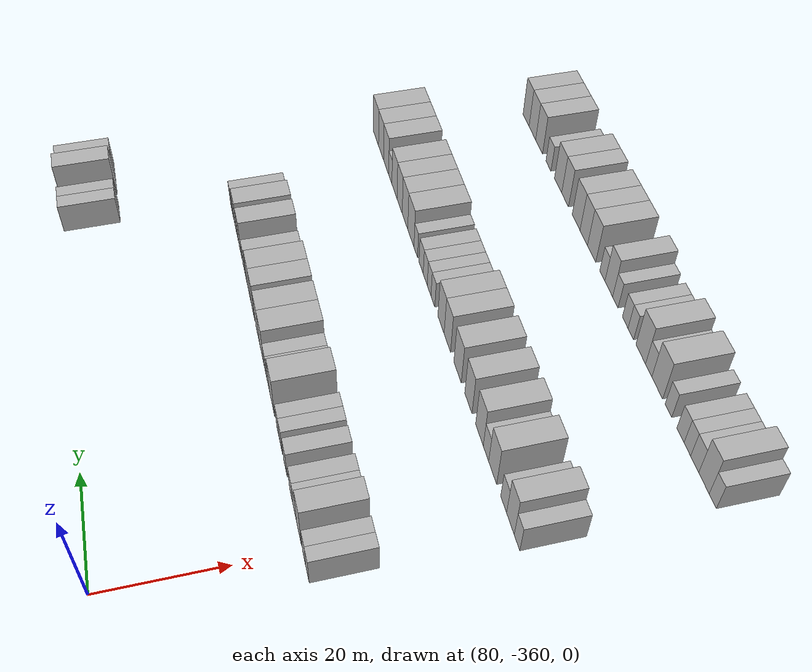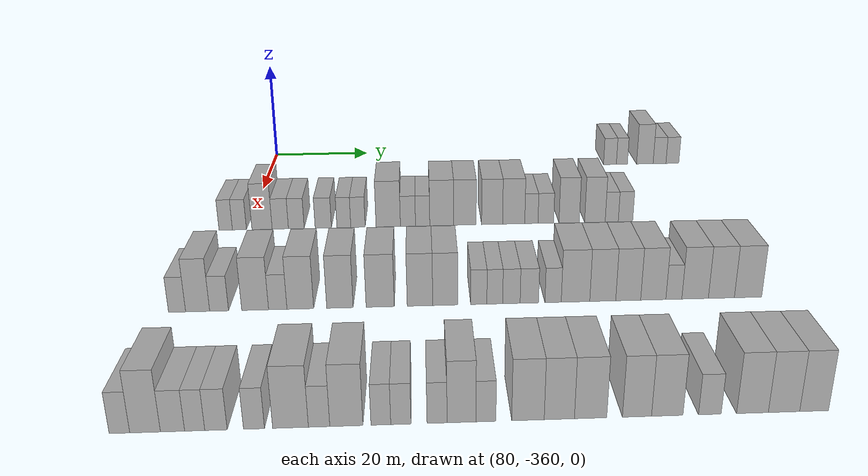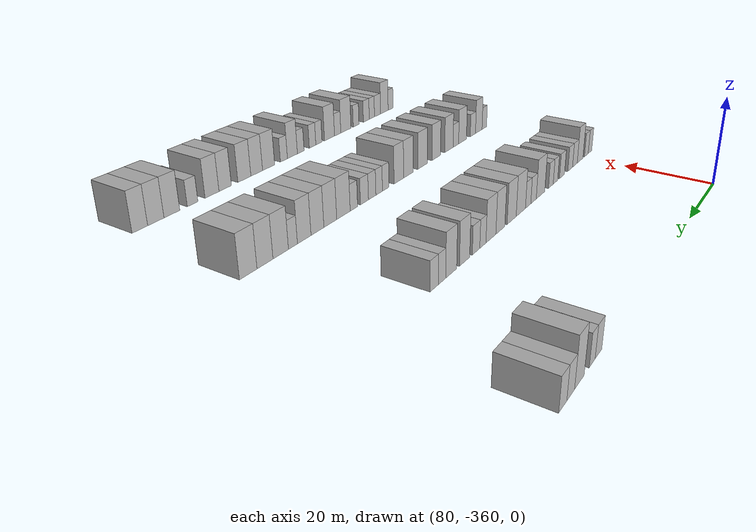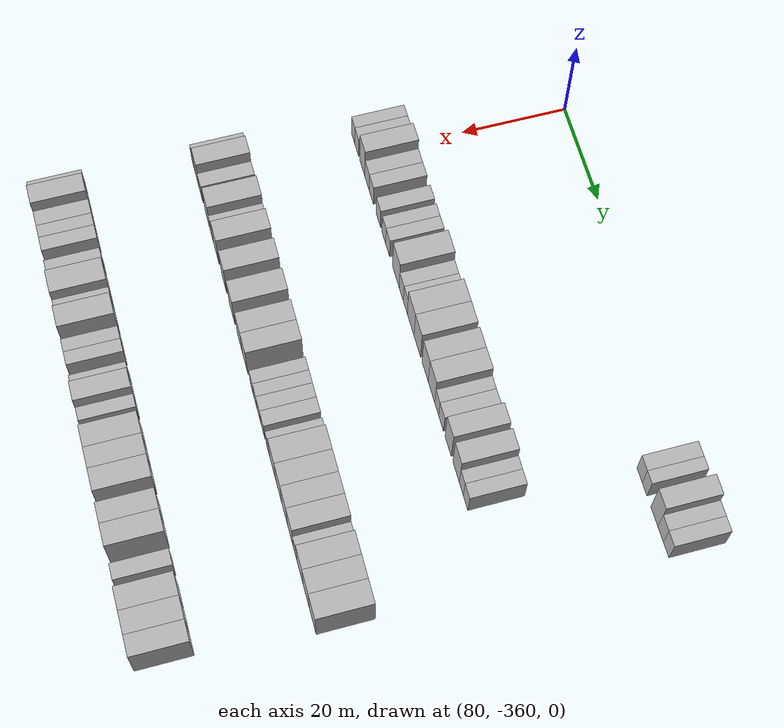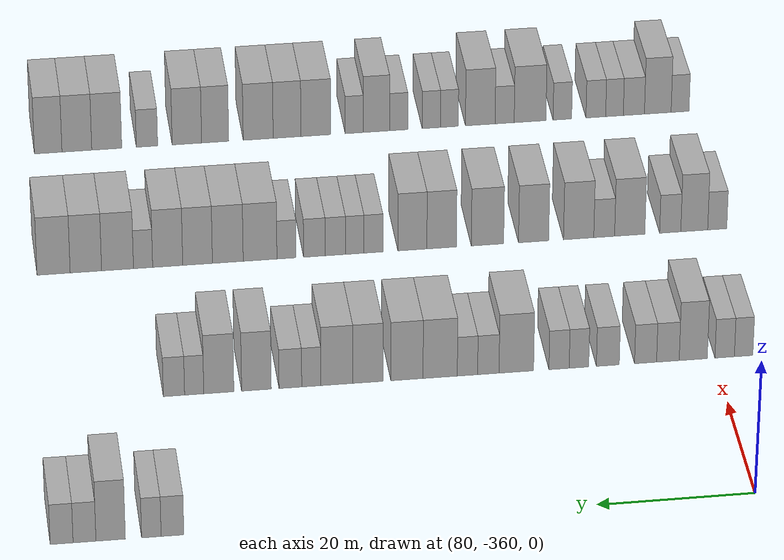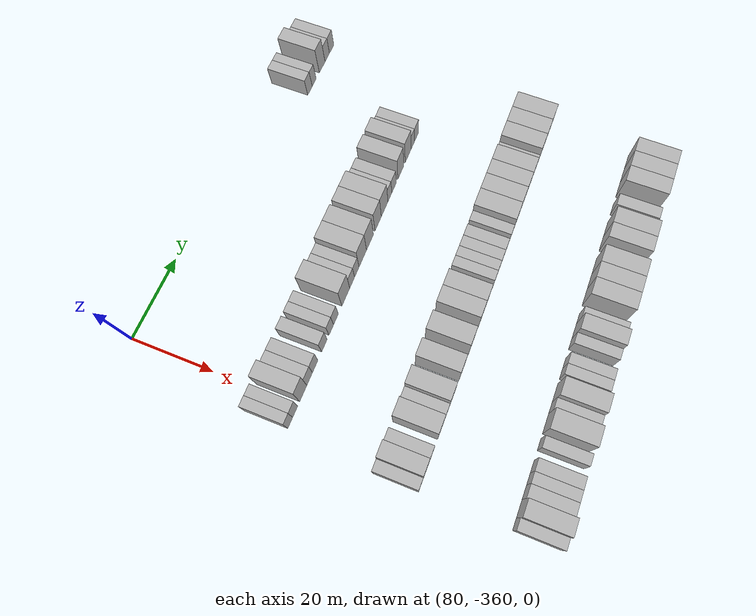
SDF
<sdf version="1.6">
 <world name="default">
  <model name="building_500">
   <static>1</static>
   <pose>85.0000 -287.1286 0 0.000000 0.000000 0.000000</pose>
   <link name="link">
    <pose>0 0 3.00 0 0 0</pose>
    <collision name="collision"><geometry><box><size>10.0000 2.8067 6.0000</size></box></geometry></collision>
    <visual name="visual">
     <cast_shadows>0</cast_shadows>
     <geometry><box><size>10.0000 2.8067 6.0000</size></box></geometry>
     <material>
      <script>
       <uri>model://HANNAS_wall/materials/scripts</uri>
       <uri>model://HANNAS_wall/materials/textures</uri>
       <name>vrc/HANNAS_wall</name>
      </script>
     </material>
    </visual>
   </link>
  </model>
  <model name="building_501">
   <static>1</static>
   <pose>85.0000 -284.5171 0 0.000000 0.000000 0.000000</pose>
   <link name="link">
    <pose>0 0 3.00 0 0 0</pose>
    <collision name="collision"><geometry><box><size>10.0000 2.4164 6.0000</size></box></geometry></collision>
    <visual name="visual">
     <cast_shadows>0</cast_shadows>
     <geometry><box><size>10.0000 2.4164 6.0000</size></box></geometry>
     <material>
      <script>
       <uri>model://HANNAS_wall/materials/scripts</uri>
       <uri>model://HANNAS_wall/materials/textures</uri>
       <name>vrc/HANNAS_wall</name>
      </script>
     </material>
    </visual>
   </link>
  </model>
  <model name="building_502">
   <static>1</static>
   <pose>85.0000 -279.4941 0 0.000000 0.000000 0.000000</pose>
   <link name="link">
    <pose>0 0 4.50 0 0 0</pose>
    <collision name="collision"><geometry><box><size>10.0000 3.6296 9.0000</size></box></geometry></collision>
    <visual name="visual">
     <cast_shadows>0</cast_shadows>
     <geometry><box><size>10.0000 3.6296 9.0000</size></box></geometry>
     <material>
      <script>
       <uri>model://HANNAS_wall/materials/scripts</uri>
       <uri>model://HANNAS_wall/materials/textures</uri>
       <name>vrc/HANNAS_wall</name>
      </script>
     </material>
    </visual>
   </link>
  </model>
  <model name="building_503">
   <static>1</static>
   <pose>85.0000 -276.2699 0 0.000000 0.000000 0.000000</pose>
   <link name="link">
    <pose>0 0 3.00 0 0 0</pose>
    <collision name="collision"><geometry><box><size>10.0000 2.8187 6.0000</size></box></geometry></collision>
    <visual name="visual">
     <cast_shadows>0</cast_shadows>
     <geometry><box><size>10.0000 2.8187 6.0000</size></box></geometry>
     <material>
      <script>
       <uri>model://HANNAS_wall/materials/scripts</uri>
       <uri>model://HANNAS_wall/materials/textures</uri>
       <name>vrc/HANNAS_wall</name>
      </script>
     </material>
    </visual>
   </link>
  </model>
  <model name="building_504">
   <static>1</static>
   <pose>85.0000 -273.4493 0 0.000000 0.000000 0.000000</pose>
   <link name="link">
    <pose>0 0 3.00 0 0 0</pose>
    <collision name="collision"><geometry><box><size>10.0000 2.8225 6.0000</size></box></geometry></collision>
    <visual name="visual">
     <cast_shadows>0</cast_shadows>
     <geometry><box><size>10.0000 2.8225 6.0000</size></box></geometry>
     <material>
      <script>
       <uri>model://HANNAS_wall/materials/scripts</uri>
       <uri>model://HANNAS_wall/materials/textures</uri>
       <name>vrc/HANNAS_wall</name>
      </script>
     </material>
    </visual>
   </link>
  </model>
  <model name="building_701">
   <static>1</static>
   <pose>115.0000 -363.8923 0 0.000000 0.000000 0.000000</pose>
   <link name="link">
    <pose>0 0 3.00 0 0 0</pose>
    <collision name="collision"><geometry><box><size>10.0000 2.4188 6.0000</size></box></geometry></collision>
    <visual name="visual">
     <cast_shadows>0</cast_shadows>
     <geometry><box><size>10.0000 2.4188 6.0000</size></box></geometry>
     <material>
      <script>
       <uri>model://HANNAS_wall/materials/scripts</uri>
       <uri>model://HANNAS_wall/materials/textures</uri>
       <name>vrc/HANNAS_wall</name>
      </script>
     </material>
    </visual>
   </link>
  </model>
  <model name="building_702">
   <static>1</static>
   <pose>115.0000 -361.4112 0 0.000000 0.000000 0.000000</pose>
   <link name="link">
    <pose>0 0 3.00 0 0 0</pose>
    <collision name="collision"><geometry><box><size>10.0000 2.5434 6.0000</size></box></geometry></collision>
    <visual name="visual">
     <cast_shadows>0</cast_shadows>
     <geometry><box><size>10.0000 2.5434 6.0000</size></box></geometry>
     <material>
      <script>
       <uri>model://HANNAS_wall/materials/scripts</uri>
       <uri>model://HANNAS_wall/materials/textures</uri>
       <name>vrc/HANNAS_wall</name>
      </script>
     </material>
    </visual>
   </link>
  </model>
  <model name="building_703">
   <static>1</static>
   <pose>115.0000 -357.3027 0 0.000000 0.000000 0.000000</pose>
   <link name="link">
    <pose>0 0 4.50 0 0 0</pose>
    <collision name="collision"><geometry><box><size>10.0000 3.6736 9.0000</size></box></geometry></collision>
    <visual name="visual">
     <cast_shadows>0</cast_shadows>
     <geometry><box><size>10.0000 3.6736 9.0000</size></box></geometry>
     <material>
      <script>
       <uri>model://HANNAS_wall/materials/scripts</uri>
       <uri>model://HANNAS_wall/materials/textures</uri>
       <name>vrc/HANNAS_wall</name>
      </script>
     </material>
    </visual>
   </link>
  </model>
  <model name="building_704">
   <static>1</static>
   <pose>115.0000 -353.9869 0 0.000000 0.000000 0.000000</pose>
   <link name="link">
    <pose>0 0 3.00 0 0 0</pose>
    <collision name="collision"><geometry><box><size>10.0000 2.9580 6.0000</size></box></geometry></collision>
    <visual name="visual">
     <cast_shadows>0</cast_shadows>
     <geometry><box><size>10.0000 2.9580 6.0000</size></box></geometry>
     <material>
      <script>
       <uri>model://HANNAS_wall/materials/scripts</uri>
       <uri>model://HANNAS_wall/materials/textures</uri>
       <name>vrc/HANNAS_wall</name>
      </script>
     </material>
    </visual>
   </link>
  </model>
  <model name="building_705">
   <static>1</static>
   <pose>115.0000 -351.0712 0 0.000000 0.000000 0.000000</pose>
   <link name="link">
    <pose>0 0 3.00 0 0 0</pose>
    <collision name="collision"><geometry><box><size>10.0000 2.8734 6.0000</size></box></geometry></collision>
    <visual name="visual">
     <cast_shadows>0</cast_shadows>
     <geometry><box><size>10.0000 2.8734 6.0000</size></box></geometry>
     <material>
      <script>
       <uri>model://HANNAS_wall/materials/scripts</uri>
       <uri>model://HANNAS_wall/materials/textures</uri>
       <name>vrc/HANNAS_wall</name>
      </script>
     </material>
    </visual>
   </link>
  </model>
  <model name="building_706">
   <static>1</static>
   <pose>115.0000 -346.1451 0 0.000000 0.000000 0.000000</pose>
   <link name="link">
    <pose>0 0 3.00 0 0 0</pose>
    <collision name="collision"><geometry><box><size>10.0000 2.9786 6.0000</size></box></geometry></collision>
    <visual name="visual">
     <cast_shadows>0</cast_shadows>
     <geometry><box><size>10.0000 2.9786 6.0000</size></box></geometry>
     <material>
      <script>
       <uri>model://HANNAS_wall/materials/scripts</uri>
       <uri>model://HANNAS_wall/materials/textures</uri>
       <name>vrc/HANNAS_wall</name>
      </script>
     </material>
    </visual>
   </link>
  </model>
  <model name="building_707">
   <static>1</static>
   <pose>115.0000 -342.3836 0 0.000000 0.000000 0.000000</pose>
   <link name="link">
    <pose>0 0 3.00 0 0 0</pose>
    <collision name="collision"><geometry><box><size>10.0000 2.5444 6.0000</size></box></geometry></collision>
    <visual name="visual">
     <cast_shadows>0</cast_shadows>
     <geometry><box><size>10.0000 2.5444 6.0000</size></box></geometry>
     <material>
      <script>
       <uri>model://HANNAS_wall/materials/scripts</uri>
       <uri>model://HANNAS_wall/materials/textures</uri>
       <name>vrc/HANNAS_wall</name>
      </script>
     </material>
    </visual>
   </link>
  </model>
  <model name="building_708">
   <static>1</static>
   <pose>115.0000 -339.7944 0 0.000000 0.000000 0.000000</pose>
   <link name="link">
    <pose>0 0 3.00 0 0 0</pose>
    <collision name="collision"><geometry><box><size>10.0000 2.6341 6.0000</size></box></geometry></collision>
    <visual name="visual">
     <cast_shadows>0</cast_shadows>
     <geometry><box><size>10.0000 2.6341 6.0000</size></box></geometry>
     <material>
      <script>
       <uri>model://HANNAS_wall/materials/scripts</uri>
       <uri>model://HANNAS_wall/materials/textures</uri>
       <name>vrc/HANNAS_wall</name>
      </script>
     </material>
    </visual>
   </link>
  </model>
  <model name="building_709">
   <static>1</static>
   <pose>115.0000 -334.2337 0 0.000000 0.000000 0.000000</pose>
   <link name="link">
    <pose>0 0 4.50 0 0 0</pose>
    <collision name="collision"><geometry><box><size>10.0000 4.4873 9.0000</size></box></geometry></collision>
    <visual name="visual">
     <cast_shadows>0</cast_shadows>
     <geometry><box><size>10.0000 4.4873 9.0000</size></box></geometry>
     <material>
      <script>
       <uri>model://HANNAS_wall/materials/scripts</uri>
       <uri>model://HANNAS_wall/materials/textures</uri>
       <name>vrc/HANNAS_wall</name>
      </script>
     </material>
    </visual>
   </link>
  </model>
  <model name="building_710">
   <static>1</static>
   <pose>115.0000 -330.6022 0 0.000000 0.000000 0.000000</pose>
   <link name="link">
    <pose>0 0 3.00 0 0 0</pose>
    <collision name="collision"><geometry><box><size>10.0000 2.7758 6.0000</size></box></geometry></collision>
    <visual name="visual">
     <cast_shadows>0</cast_shadows>
     <geometry><box><size>10.0000 2.7758 6.0000</size></box></geometry>
     <material>
      <script>
       <uri>model://HANNAS_wall/materials/scripts</uri>
       <uri>model://HANNAS_wall/materials/textures</uri>
       <name>vrc/HANNAS_wall</name>
      </script>
     </material>
    </visual>
   </link>
  </model>
  <model name="building_711">
   <static>1</static>
   <pose>115.0000 -327.8953 0 0.000000 0.000000 0.000000</pose>
   <link name="link">
    <pose>0 0 3.00 0 0 0</pose>
    <collision name="collision"><geometry><box><size>10.0000 2.6379 6.0000</size></box></geometry></collision>
    <visual name="visual">
     <cast_shadows>0</cast_shadows>
     <geometry><box><size>10.0000 2.6379 6.0000</size></box></geometry>
     <material>
      <script>
       <uri>model://HANNAS_wall/materials/scripts</uri>
       <uri>model://HANNAS_wall/materials/textures</uri>
       <name>vrc/HANNAS_wall</name>
      </script>
     </material>
    </visual>
   </link>
  </model>
  <model name="building_712">
   <static>1</static>
   <pose>115.0000 -324.3574 0 0.000000 0.000000 0.000000</pose>
   <link name="link">
    <pose>0 0 4.50 0 0 0</pose>
    <collision name="collision"><geometry><box><size>10.0000 4.4379 9.0000</size></box></geometry></collision>
    <visual name="visual">
     <cast_shadows>0</cast_shadows>
     <geometry><box><size>10.0000 4.4379 9.0000</size></box></geometry>
     <material>
      <script>
       <uri>model://HANNAS_wall/materials/scripts</uri>
       <uri>model://HANNAS_wall/materials/textures</uri>
       <name>vrc/HANNAS_wall</name>
      </script>
     </material>
    </visual>
   </link>
  </model>
  <model name="building_713">
   <static>1</static>
   <pose>115.0000 -320.0556 0 0.000000 0.000000 0.000000</pose>
   <link name="link">
    <pose>0 0 4.50 0 0 0</pose>
    <collision name="collision"><geometry><box><size>10.0000 4.1657 9.0000</size></box></geometry></collision>
    <visual name="visual">
     <cast_shadows>0</cast_shadows>
     <geometry><box><size>10.0000 4.1657 9.0000</size></box></geometry>
     <material>
      <script>
       <uri>model://HANNAS_wall/materials/scripts</uri>
       <uri>model://HANNAS_wall/materials/textures</uri>
       <name>vrc/HANNAS_wall</name>
      </script>
     </material>
    </visual>
   </link>
  </model>
  <model name="building_714">
   <static>1</static>
   <pose>115.0000 -315.0232 0 0.000000 0.000000 0.000000</pose>
   <link name="link">
    <pose>0 0 4.50 0 0 0</pose>
    <collision name="collision"><geometry><box><size>10.0000 3.8990 9.0000</size></box></geometry></collision>
    <visual name="visual">
     <cast_shadows>0</cast_shadows>
     <geometry><box><size>10.0000 3.8990 9.0000</size></box></geometry>
     <material>
      <script>
       <uri>model://HANNAS_wall/materials/scripts</uri>
       <uri>model://HANNAS_wall/materials/textures</uri>
       <name>vrc/HANNAS_wall</name>
      </script>
     </material>
    </visual>
   </link>
  </model>
  <model name="building_715">
   <static>1</static>
   <pose>115.0000 -311.0073 0 0.000000 0.000000 0.000000</pose>
   <link name="link">
    <pose>0 0 4.50 0 0 0</pose>
    <collision name="collision"><geometry><box><size>10.0000 4.1329 9.0000</size></box></geometry></collision>
    <visual name="visual">
     <cast_shadows>0</cast_shadows>
     <geometry><box><size>10.0000 4.1329 9.0000</size></box></geometry>
     <material>
      <script>
       <uri>model://HANNAS_wall/materials/scripts</uri>
       <uri>model://HANNAS_wall/materials/textures</uri>
       <name>vrc/HANNAS_wall</name>
      </script>
     </material>
    </visual>
   </link>
  </model>
  <model name="building_716">
   <static>1</static>
   <pose>115.0000 -307.7060 0 0.000000 0.000000 0.000000</pose>
   <link name="link">
    <pose>0 0 3.00 0 0 0</pose>
    <collision name="collision"><geometry><box><size>10.0000 2.4697 6.0000</size></box></geometry></collision>
    <visual name="visual">
     <cast_shadows>0</cast_shadows>
     <geometry><box><size>10.0000 2.4697 6.0000</size></box></geometry>
     <material>
      <script>
       <uri>model://HANNAS_wall/materials/scripts</uri>
       <uri>model://HANNAS_wall/materials/textures</uri>
       <name>vrc/HANNAS_wall</name>
      </script>
     </material>
    </visual>
   </link>
  </model>
  <model name="building_717">
   <static>1</static>
   <pose>115.0000 -305.0086 0 0.000000 0.000000 0.000000</pose>
   <link name="link">
    <pose>0 0 3.00 0 0 0</pose>
    <collision name="collision"><geometry><box><size>10.0000 2.9250 6.0000</size></box></geometry></collision>
    <visual name="visual">
     <cast_shadows>0</cast_shadows>
     <geometry><box><size>10.0000 2.9250 6.0000</size></box></geometry>
     <material>
      <script>
       <uri>model://HANNAS_wall/materials/scripts</uri>
       <uri>model://HANNAS_wall/materials/textures</uri>
       <name>vrc/HANNAS_wall</name>
      </script>
     </material>
    </visual>
   </link>
  </model>
  <model name="building_718">
   <static>1</static>
   <pose>115.0000 -300.6396 0 0.000000 0.000000 0.000000</pose>
   <link name="link">
    <pose>0 0 4.50 0 0 0</pose>
    <collision name="collision"><geometry><box><size>10.0000 3.8129 9.0000</size></box></geometry></collision>
    <visual name="visual">
     <cast_shadows>0</cast_shadows>
     <geometry><box><size>10.0000 3.8129 9.0000</size></box></geometry>
     <material>
      <script>
       <uri>model://HANNAS_wall/materials/scripts</uri>
       <uri>model://HANNAS_wall/materials/textures</uri>
       <name>vrc/HANNAS_wall</name>
      </script>
     </material>
    </visual>
   </link>
  </model>
  <model name="building_719">
   <static>1</static>
   <pose>115.0000 -295.7995 0 0.000000 0.000000 0.000000</pose>
   <link name="link">
    <pose>0 0 4.50 0 0 0</pose>
    <collision name="collision"><geometry><box><size>10.0000 3.8674 9.0000</size></box></geometry></collision>
    <visual name="visual">
     <cast_shadows>0</cast_shadows>
     <geometry><box><size>10.0000 3.8674 9.0000</size></box></geometry>
     <material>
      <script>
       <uri>model://HANNAS_wall/materials/scripts</uri>
       <uri>model://HANNAS_wall/materials/textures</uri>
       <name>vrc/HANNAS_wall</name>
      </script>
     </material>
    </visual>
   </link>
  </model>
  <model name="building_720">
   <static>1</static>
   <pose>115.0000 -292.6357 0 0.000000 0.000000 0.000000</pose>
   <link name="link">
    <pose>0 0 3.00 0 0 0</pose>
    <collision name="collision"><geometry><box><size>10.0000 2.4602 6.0000</size></box></geometry></collision>
    <visual name="visual">
     <cast_shadows>0</cast_shadows>
     <geometry><box><size>10.0000 2.4602 6.0000</size></box></geometry>
     <material>
      <script>
       <uri>model://HANNAS_wall/materials/scripts</uri>
       <uri>model://HANNAS_wall/materials/textures</uri>
       <name>vrc/HANNAS_wall</name>
      </script>
     </material>
    </visual>
   </link>
  </model>
  <model name="building_721">
   <static>1</static>
   <pose>115.0000 -290.0402 0 0.000000 0.000000 0.000000</pose>
   <link name="link">
    <pose>0 0 3.00 0 0 0</pose>
    <collision name="collision"><geometry><box><size>10.0000 2.7307 6.0000</size></box></geometry></collision>
    <visual name="visual">
     <cast_shadows>0</cast_shadows>
     <geometry><box><size>10.0000 2.7307 6.0000</size></box></geometry>
     <material>
      <script>
       <uri>model://HANNAS_wall/materials/scripts</uri>
       <uri>model://HANNAS_wall/materials/textures</uri>
       <name>vrc/HANNAS_wall</name>
      </script>
     </material>
    </visual>
   </link>
  </model>
  <model name="building_933">
   <static>1</static>
   <pose>145.0000 -365.7117 0 0.000000 0.000000 0.000000</pose>
   <link name="link">
    <pose>0 0 3.00 0 0 0</pose>
    <collision name="collision"><geometry><box><size>10.0000 2.5872 6.0000</size></box></geometry></collision>
    <visual name="visual">
     <cast_shadows>0</cast_shadows>
     <geometry><box><size>10.0000 2.5872 6.0000</size></box></geometry>
     <material>
      <script>
       <uri>model://HANNAS_wall/materials/scripts</uri>
       <uri>model://HANNAS_wall/materials/textures</uri>
       <name>vrc/HANNAS_wall</name>
      </script>
     </material>
    </visual>
   </link>
  </model>
  <model name="building_934">
   <static>1</static>
   <pose>145.0000 -362.5950 0 0.000000 0.000000 0.000000</pose>
   <link name="link">
    <pose>0 0 4.50 0 0 0</pose>
    <collision name="collision"><geometry><box><size>10.0000 3.6462 9.0000</size></box></geometry></collision>
    <visual name="visual">
     <cast_shadows>0</cast_shadows>
     <geometry><box><size>10.0000 3.6462 9.0000</size></box></geometry>
     <material>
      <script>
       <uri>model://HANNAS_wall/materials/scripts</uri>
       <uri>model://HANNAS_wall/materials/textures</uri>
       <name>vrc/HANNAS_wall</name>
      </script>
     </material>
    </visual>
   </link>
  </model>
  <model name="building_935">
   <static>1</static>
   <pose>145.0000 -359.3402 0 0.000000 0.000000 0.000000</pose>
   <link name="link">
    <pose>0 0 3.00 0 0 0</pose>
    <collision name="collision"><geometry><box><size>10.0000 2.8635 6.0000</size></box></geometry></collision>
    <visual name="visual">
     <cast_shadows>0</cast_shadows>
     <geometry><box><size>10.0000 2.8635 6.0000</size></box></geometry>
     <material>
      <script>
       <uri>model://HANNAS_wall/materials/scripts</uri>
       <uri>model://HANNAS_wall/materials/textures</uri>
       <name>vrc/HANNAS_wall</name>
      </script>
     </material>
    </visual>
   </link>
  </model>
  <model name="building_936">
   <static>1</static>
   <pose>145.0000 -353.8622 0 0.000000 0.000000 0.000000</pose>
   <link name="link">
    <pose>0 0 4.50 0 0 0</pose>
    <collision name="collision"><geometry><box><size>10.0000 4.0925 9.0000</size></box></geometry></collision>
    <visual name="visual">
     <cast_shadows>0</cast_shadows>
     <geometry><box><size>10.0000 4.0925 9.0000</size></box></geometry>
     <material>
      <script>
       <uri>model://HANNAS_wall/materials/scripts</uri>
       <uri>model://HANNAS_wall/materials/textures</uri>
       <name>vrc/HANNAS_wall</name>
      </script>
     </material>
    </visual>
   </link>
  </model>
  <model name="building_937">
   <static>1</static>
   <pose>145.0000 -350.4102 0 0.000000 0.000000 0.000000</pose>
   <link name="link">
    <pose>0 0 3.00 0 0 0</pose>
    <collision name="collision"><geometry><box><size>10.0000 2.8115 6.0000</size></box></geometry></collision>
    <visual name="visual">
     <cast_shadows>0</cast_shadows>
     <geometry><box><size>10.0000 2.8115 6.0000</size></box></geometry>
     <material>
      <script>
       <uri>model://HANNAS_wall/materials/scripts</uri>
       <uri>model://HANNAS_wall/materials/textures</uri>
       <name>vrc/HANNAS_wall</name>
      </script>
     </material>
    </visual>
   </link>
  </model>
  <model name="building_938">
   <static>1</static>
   <pose>145.0000 -346.9622 0 0.000000 0.000000 0.000000</pose>
   <link name="link">
    <pose>0 0 4.50 0 0 0</pose>
    <collision name="collision"><geometry><box><size>10.0000 4.0846 9.0000</size></box></geometry></collision>
    <visual name="visual">
     <cast_shadows>0</cast_shadows>
     <geometry><box><size>10.0000 4.0846 9.0000</size></box></geometry>
     <material>
      <script>
       <uri>model://HANNAS_wall/materials/scripts</uri>
       <uri>model://HANNAS_wall/materials/textures</uri>
       <name>vrc/HANNAS_wall</name>
      </script>
     </material>
    </visual>
   </link>
  </model>
  <model name="building_939">
   <static>1</static>
   <pose>145.0000 -340.8890 0 0.000000 0.000000 0.000000</pose>
   <link name="link">
    <pose>0 0 4.50 0 0 0</pose>
    <collision name="collision"><geometry><box><size>10.0000 4.0617 9.0000</size></box></geometry></collision>
    <visual name="visual">
     <cast_shadows>0</cast_shadows>
     <geometry><box><size>10.0000 4.0617 9.0000</size></box></geometry>
     <material>
      <script>
       <uri>model://HANNAS_wall/materials/scripts</uri>
       <uri>model://HANNAS_wall/materials/textures</uri>
       <name>vrc/HANNAS_wall</name>
      </script>
     </material>
    </visual>
   </link>
  </model>
  <model name="building_940">
   <static>1</static>
   <pose>145.0000 -334.6846 0 0.000000 0.000000 0.000000</pose>
   <link name="link">
    <pose>0 0 4.50 0 0 0</pose>
    <collision name="collision"><geometry><box><size>10.0000 4.3472 9.0000</size></box></geometry></collision>
    <visual name="visual">
     <cast_shadows>0</cast_shadows>
     <geometry><box><size>10.0000 4.3472 9.0000</size></box></geometry>
     <material>
      <script>
       <uri>model://HANNAS_wall/materials/scripts</uri>
       <uri>model://HANNAS_wall/materials/textures</uri>
       <name>vrc/HANNAS_wall</name>
      </script>
     </material>
    </visual>
   </link>
  </model>
  <model name="building_941">
   <static>1</static>
   <pose>145.0000 -328.5294 0 0.000000 0.000000 0.000000</pose>
   <link name="link">
    <pose>0 0 4.50 0 0 0</pose>
    <collision name="collision"><geometry><box><size>10.0000 3.9631 9.0000</size></box></geometry></collision>
    <visual name="visual">
     <cast_shadows>0</cast_shadows>
     <geometry><box><size>10.0000 3.9631 9.0000</size></box></geometry>
     <material>
      <script>
       <uri>model://HANNAS_wall/materials/scripts</uri>
       <uri>model://HANNAS_wall/materials/textures</uri>
       <name>vrc/HANNAS_wall</name>
      </script>
     </material>
    </visual>
   </link>
  </model>
  <model name="building_942">
   <static>1</static>
   <pose>145.0000 -324.6018 0 0.000000 0.000000 0.000000</pose>
   <link name="link">
    <pose>0 0 4.50 0 0 0</pose>
    <collision name="collision"><geometry><box><size>10.0000 3.8922 9.0000</size></box></geometry></collision>
    <visual name="visual">
     <cast_shadows>0</cast_shadows>
     <geometry><box><size>10.0000 3.8922 9.0000</size></box></geometry>
     <material>
      <script>
       <uri>model://HANNAS_wall/materials/scripts</uri>
       <uri>model://HANNAS_wall/materials/textures</uri>
       <name>vrc/HANNAS_wall</name>
      </script>
     </material>
    </visual>
   </link>
  </model>
  <model name="building_943">
   <static>1</static>
   <pose>145.0000 -319.3925 0 0.000000 0.000000 0.000000</pose>
   <link name="link">
    <pose>0 0 3.00 0 0 0</pose>
    <collision name="collision"><geometry><box><size>10.0000 2.5263 6.0000</size></box></geometry></collision>
    <visual name="visual">
     <cast_shadows>0</cast_shadows>
     <geometry><box><size>10.0000 2.5263 6.0000</size></box></geometry>
     <material>
      <script>
       <uri>model://HANNAS_wall/materials/scripts</uri>
       <uri>model://HANNAS_wall/materials/textures</uri>
       <name>vrc/HANNAS_wall</name>
      </script>
     </material>
    </visual>
   </link>
  </model>
  <model name="building_944">
   <static>1</static>
   <pose>145.0000 -316.8950 0 0.000000 0.000000 0.000000</pose>
   <link name="link">
    <pose>0 0 3.00 0 0 0</pose>
    <collision name="collision"><geometry><box><size>10.0000 2.4688 6.0000</size></box></geometry></collision>
    <visual name="visual">
     <cast_shadows>0</cast_shadows>
     <geometry><box><size>10.0000 2.4688 6.0000</size></box></geometry>
     <material>
      <script>
       <uri>model://HANNAS_wall/materials/scripts</uri>
       <uri>model://HANNAS_wall/materials/textures</uri>
       <name>vrc/HANNAS_wall</name>
      </script>
     </material>
    </visual>
   </link>
  </model>
  <model name="building_945">
   <static>1</static>
   <pose>145.0000 -314.2977 0 0.000000 0.000000 0.000000</pose>
   <link name="link">
    <pose>0 0 3.00 0 0 0</pose>
    <collision name="collision"><geometry><box><size>10.0000 2.7257 6.0000</size></box></geometry></collision>
    <visual name="visual">
     <cast_shadows>0</cast_shadows>
     <geometry><box><size>10.0000 2.7257 6.0000</size></box></geometry>
     <material>
      <script>
       <uri>model://HANNAS_wall/materials/scripts</uri>
       <uri>model://HANNAS_wall/materials/textures</uri>
       <name>vrc/HANNAS_wall</name>
      </script>
     </material>
    </visual>
   </link>
  </model>
  <model name="building_946">
   <static>1</static>
   <pose>145.0000 -311.4900 0 0.000000 0.000000 0.000000</pose>
   <link name="link">
    <pose>0 0 3.00 0 0 0</pose>
    <collision name="collision"><geometry><box><size>10.0000 2.8897 6.0000</size></box></geometry></collision>
    <visual name="visual">
     <cast_shadows>0</cast_shadows>
     <geometry><box><size>10.0000 2.8897 6.0000</size></box></geometry>
     <material>
      <script>
       <uri>model://HANNAS_wall/materials/scripts</uri>
       <uri>model://HANNAS_wall/materials/textures</uri>
       <name>vrc/HANNAS_wall</name>
      </script>
     </material>
    </visual>
   </link>
  </model>
  <model name="building_947">
   <static>1</static>
   <pose>145.0000 -307.7657 0 0.000000 0.000000 0.000000</pose>
   <link name="link">
    <pose>0 0 3.00 0 0 0</pose>
    <collision name="collision"><geometry><box><size>10.0000 2.5589 6.0000</size></box></geometry></collision>
    <visual name="visual">
     <cast_shadows>0</cast_shadows>
     <geometry><box><size>10.0000 2.5589 6.0000</size></box></geometry>
     <material>
      <script>
       <uri>model://HANNAS_wall/materials/scripts</uri>
       <uri>model://HANNAS_wall/materials/textures</uri>
       <name>vrc/HANNAS_wall</name>
      </script>
     </material>
    </visual>
   </link>
  </model>
  <model name="building_948">
   <static>1</static>
   <pose>145.0000 -304.2386 0 0.000000 0.000000 0.000000</pose>
   <link name="link">
    <pose>0 0 4.50 0 0 0</pose>
    <collision name="collision"><geometry><box><size>10.0000 4.4952 9.0000</size></box></geometry></collision>
    <visual name="visual">
     <cast_shadows>0</cast_shadows>
     <geometry><box><size>10.0000 4.4952 9.0000</size></box></geometry>
     <material>
      <script>
       <uri>model://HANNAS_wall/materials/scripts</uri>
       <uri>model://HANNAS_wall/materials/textures</uri>
       <name>vrc/HANNAS_wall</name>
      </script>
     </material>
    </visual>
   </link>
  </model>
  <model name="building_949">
   <static>1</static>
   <pose>145.0000 -299.9409 0 0.000000 0.000000 0.000000</pose>
   <link name="link">
    <pose>0 0 4.50 0 0 0</pose>
    <collision name="collision"><geometry><box><size>10.0000 4.1002 9.0000</size></box></geometry></collision>
    <visual name="visual">
     <cast_shadows>0</cast_shadows>
     <geometry><box><size>10.0000 4.1002 9.0000</size></box></geometry>
     <material>
      <script>
       <uri>model://HANNAS_wall/materials/scripts</uri>
       <uri>model://HANNAS_wall/materials/textures</uri>
       <name>vrc/HANNAS_wall</name>
      </script>
     </material>
    </visual>
   </link>
  </model>
  <model name="building_950">
   <static>1</static>
   <pose>145.0000 -295.9168 0 0.000000 0.000000 0.000000</pose>
   <link name="link">
    <pose>0 0 4.50 0 0 0</pose>
    <collision name="collision"><geometry><box><size>10.0000 3.9481 9.0000</size></box></geometry></collision>
    <visual name="visual">
     <cast_shadows>0</cast_shadows>
     <geometry><box><size>10.0000 3.9481 9.0000</size></box></geometry>
     <material>
      <script>
       <uri>model://HANNAS_wall/materials/scripts</uri>
       <uri>model://HANNAS_wall/materials/textures</uri>
       <name>vrc/HANNAS_wall</name>
      </script>
     </material>
    </visual>
   </link>
  </model>
  <model name="building_951">
   <static>1</static>
   <pose>145.0000 -291.9430 0 0.000000 0.000000 0.000000</pose>
   <link name="link">
    <pose>0 0 4.50 0 0 0</pose>
    <collision name="collision"><geometry><box><size>10.0000 3.9996 9.0000</size></box></geometry></collision>
    <visual name="visual">
     <cast_shadows>0</cast_shadows>
     <geometry><box><size>10.0000 3.9996 9.0000</size></box></geometry>
     <material>
      <script>
       <uri>model://HANNAS_wall/materials/scripts</uri>
       <uri>model://HANNAS_wall/materials/textures</uri>
       <name>vrc/HANNAS_wall</name>
      </script>
     </material>
    </visual>
   </link>
  </model>
  <model name="building_952">
   <static>1</static>
   <pose>145.0000 -288.6722 0 0.000000 0.000000 0.000000</pose>
   <link name="link">
    <pose>0 0 3.00 0 0 0</pose>
    <collision name="collision"><geometry><box><size>10.0000 2.5421 6.0000</size></box></geometry></collision>
    <visual name="visual">
     <cast_shadows>0</cast_shadows>
     <geometry><box><size>10.0000 2.5421 6.0000</size></box></geometry>
     <material>
      <script>
       <uri>model://HANNAS_wall/materials/scripts</uri>
       <uri>model://HANNAS_wall/materials/textures</uri>
       <name>vrc/HANNAS_wall</name>
      </script>
     </material>
    </visual>
   </link>
  </model>
  <model name="building_953">
   <static>1</static>
   <pose>145.0000 -285.2870 0 0.000000 0.000000 0.000000</pose>
   <link name="link">
    <pose>0 0 4.50 0 0 0</pose>
    <collision name="collision"><geometry><box><size>10.0000 4.2283 9.0000</size></box></geometry></collision>
    <visual name="visual">
     <cast_shadows>0</cast_shadows>
     <geometry><box><size>10.0000 4.2283 9.0000</size></box></geometry>
     <material>
      <script>
       <uri>model://HANNAS_wall/materials/scripts</uri>
       <uri>model://HANNAS_wall/materials/textures</uri>
       <name>vrc/HANNAS_wall</name>
      </script>
     </material>
    </visual>
   </link>
  </model>
  <model name="building_954">
   <static>1</static>
   <pose>145.0000 -281.0913 0 0.000000 0.000000 0.000000</pose>
   <link name="link">
    <pose>0 0 4.50 0 0 0</pose>
    <collision name="collision"><geometry><box><size>10.0000 4.1631 9.0000</size></box></geometry></collision>
    <visual name="visual">
     <cast_shadows>0</cast_shadows>
     <geometry><box><size>10.0000 4.1631 9.0000</size></box></geometry>
     <material>
      <script>
       <uri>model://HANNAS_wall/materials/scripts</uri>
       <uri>model://HANNAS_wall/materials/textures</uri>
       <name>vrc/HANNAS_wall</name>
      </script>
     </material>
    </visual>
   </link>
  </model>
  <model name="building_955">
   <static>1</static>
   <pose>145.0000 -276.8174 0 0.000000 0.000000 0.000000</pose>
   <link name="link">
    <pose>0 0 4.50 0 0 0</pose>
    <collision name="collision"><geometry><box><size>10.0000 4.3847 9.0000</size></box></geometry></collision>
    <visual name="visual">
     <cast_shadows>0</cast_shadows>
     <geometry><box><size>10.0000 4.3847 9.0000</size></box></geometry>
     <material>
      <script>
       <uri>model://HANNAS_wall/materials/scripts</uri>
       <uri>model://HANNAS_wall/materials/textures</uri>
       <name>vrc/HANNAS_wall</name>
      </script>
     </material>
    </visual>
   </link>
  </model>
  <model name="building_1170">
   <static>1</static>
   <pose>175.0000 -365.7710 0 0.000000 0.000000 0.000000</pose>
   <link name="link">
    <pose>0 0 3.00 0 0 0</pose>
    <collision name="collision"><geometry><box><size>10.0000 2.5106 6.0000</size></box></geometry></collision>
    <visual name="visual">
     <cast_shadows>0</cast_shadows>
     <geometry><box><size>10.0000 2.5106 6.0000</size></box></geometry>
     <material>
      <script>
       <uri>model://HANNAS_wall/materials/scripts</uri>
       <uri>model://HANNAS_wall/materials/textures</uri>
       <name>vrc/HANNAS_wall</name>
      </script>
     </material>
    </visual>
   </link>
  </model>
  <model name="building_1171">
   <static>1</static>
   <pose>175.0000 -362.6469 0 0.000000 0.000000 0.000000</pose>
   <link name="link">
    <pose>0 0 4.50 0 0 0</pose>
    <collision name="collision"><geometry><box><size>10.0000 3.7377 9.0000</size></box></geometry></collision>
    <visual name="visual">
     <cast_shadows>0</cast_shadows>
     <geometry><box><size>10.0000 3.7377 9.0000</size></box></geometry>
     <material>
      <script>
       <uri>model://HANNAS_wall/materials/scripts</uri>
       <uri>model://HANNAS_wall/materials/textures</uri>
       <name>vrc/HANNAS_wall</name>
      </script>
     </material>
    </visual>
   </link>
  </model>
  <model name="building_1172">
   <static>1</static>
   <pose>175.0000 -359.2996 0 0.000000 0.000000 0.000000</pose>
   <link name="link">
    <pose>0 0 3.00 0 0 0</pose>
    <collision name="collision"><geometry><box><size>10.0000 2.9568 6.0000</size></box></geometry></collision>
    <visual name="visual">
     <cast_shadows>0</cast_shadows>
     <geometry><box><size>10.0000 2.9568 6.0000</size></box></geometry>
     <material>
      <script>
       <uri>model://HANNAS_wall/materials/scripts</uri>
       <uri>model://HANNAS_wall/materials/textures</uri>
       <name>vrc/HANNAS_wall</name>
      </script>
     </material>
    </visual>
   </link>
  </model>
  <model name="building_1173">
   <static>1</static>
   <pose>175.0000 -356.5875 0 0.000000 0.000000 0.000000</pose>
   <link name="link">
    <pose>0 0 3.00 0 0 0</pose>
    <collision name="collision"><geometry><box><size>10.0000 2.4674 6.0000</size></box></geometry></collision>
    <visual name="visual">
     <cast_shadows>0</cast_shadows>
     <geometry><box><size>10.0000 2.4674 6.0000</size></box></geometry>
     <material>
      <script>
       <uri>model://HANNAS_wall/materials/scripts</uri>
       <uri>model://HANNAS_wall/materials/textures</uri>
       <name>vrc/HANNAS_wall</name>
      </script>
     </material>
    </visual>
   </link>
  </model>
  <model name="building_1174">
   <static>1</static>
   <pose>175.0000 -353.9786 0 0.000000 0.000000 0.000000</pose>
   <link name="link">
    <pose>0 0 3.00 0 0 0</pose>
    <collision name="collision"><geometry><box><size>10.0000 2.7505 6.0000</size></box></geometry></collision>
    <visual name="visual">
     <cast_shadows>0</cast_shadows>
     <geometry><box><size>10.0000 2.7505 6.0000</size></box></geometry>
     <material>
      <script>
       <uri>model://HANNAS_wall/materials/scripts</uri>
       <uri>model://HANNAS_wall/materials/textures</uri>
       <name>vrc/HANNAS_wall</name>
      </script>
     </material>
    </visual>
   </link>
  </model>
  <model name="building_1175">
   <static>1</static>
   <pose>175.0000 -349.3065 0 0.000000 0.000000 0.000000</pose>
   <link name="link">
    <pose>0 0 3.00 0 0 0</pose>
    <collision name="collision"><geometry><box><size>10.0000 2.5936 6.0000</size></box></geometry></collision>
    <visual name="visual">
     <cast_shadows>0</cast_shadows>
     <geometry><box><size>10.0000 2.5936 6.0000</size></box></geometry>
     <material>
      <script>
       <uri>model://HANNAS_wall/materials/scripts</uri>
       <uri>model://HANNAS_wall/materials/textures</uri>
       <name>vrc/HANNAS_wall</name>
      </script>
     </material>
    </visual>
   </link>
  </model>
  <model name="building_1176">
   <static>1</static>
   <pose>175.0000 -344.7999 0 0.000000 0.000000 0.000000</pose>
   <link name="link">
    <pose>0 0 4.50 0 0 0</pose>
    <collision name="collision"><geometry><box><size>10.0000 4.4196 9.0000</size></box></geometry></collision>
    <visual name="visual">
     <cast_shadows>0</cast_shadows>
     <geometry><box><size>10.0000 4.4196 9.0000</size></box></geometry>
     <material>
      <script>
       <uri>model://HANNAS_wall/materials/scripts</uri>
       <uri>model://HANNAS_wall/materials/textures</uri>
       <name>vrc/HANNAS_wall</name>
      </script>
     </material>
    </visual>
   </link>
  </model>
  <model name="building_1177">
   <static>1</static>
   <pose>175.0000 -341.2622 0 0.000000 0.000000 0.000000</pose>
   <link name="link">
    <pose>0 0 3.00 0 0 0</pose>
    <collision name="collision"><geometry><box><size>10.0000 2.6558 6.0000</size></box></geometry></collision>
    <visual name="visual">
     <cast_shadows>0</cast_shadows>
     <geometry><box><size>10.0000 2.6558 6.0000</size></box></geometry>
     <material>
      <script>
       <uri>model://HANNAS_wall/materials/scripts</uri>
       <uri>model://HANNAS_wall/materials/textures</uri>
       <name>vrc/HANNAS_wall</name>
      </script>
     </material>
    </visual>
   </link>
  </model>
  <model name="building_1178">
   <static>1</static>
   <pose>175.0000 -337.8743 0 0.000000 0.000000 0.000000</pose>
   <link name="link">
    <pose>0 0 4.50 0 0 0</pose>
    <collision name="collision"><geometry><box><size>10.0000 4.1201 9.0000</size></box></geometry></collision>
    <visual name="visual">
     <cast_shadows>0</cast_shadows>
     <geometry><box><size>10.0000 4.1201 9.0000</size></box></geometry>
     <material>
      <script>
       <uri>model://HANNAS_wall/materials/scripts</uri>
       <uri>model://HANNAS_wall/materials/textures</uri>
       <name>vrc/HANNAS_wall</name>
      </script>
     </material>
    </visual>
   </link>
  </model>
  <model name="building_1179">
   <static>1</static>
   <pose>175.0000 -333.5764 0 0.000000 0.000000 0.000000</pose>
   <link name="link">
    <pose>0 0 3.00 0 0 0</pose>
    <collision name="collision"><geometry><box><size>10.0000 2.4756 6.0000</size></box></geometry></collision>
    <visual name="visual">
     <cast_shadows>0</cast_shadows>
     <geometry><box><size>10.0000 2.4756 6.0000</size></box></geometry>
     <material>
      <script>
       <uri>model://HANNAS_wall/materials/scripts</uri>
       <uri>model://HANNAS_wall/materials/textures</uri>
       <name>vrc/HANNAS_wall</name>
      </script>
     </material>
    </visual>
   </link>
  </model>
  <model name="building_1180">
   <static>1</static>
   <pose>175.0000 -331.0692 0 0.000000 0.000000 0.000000</pose>
   <link name="link">
    <pose>0 0 3.00 0 0 0</pose>
    <collision name="collision"><geometry><box><size>10.0000 2.5388 6.0000</size></box></geometry></collision>
    <visual name="visual">
     <cast_shadows>0</cast_shadows>
     <geometry><box><size>10.0000 2.5388 6.0000</size></box></geometry>
     <material>
      <script>
       <uri>model://HANNAS_wall/materials/scripts</uri>
       <uri>model://HANNAS_wall/materials/textures</uri>
       <name>vrc/HANNAS_wall</name>
      </script>
     </material>
    </visual>
   </link>
  </model>
  <model name="building_1181">
   <static>1</static>
   <pose>175.0000 -326.5409 0 0.000000 0.000000 0.000000</pose>
   <link name="link">
    <pose>0 0 3.00 0 0 0</pose>
    <collision name="collision"><geometry><box><size>10.0000 2.5177 6.0000</size></box></geometry></collision>
    <visual name="visual">
     <cast_shadows>0</cast_shadows>
     <geometry><box><size>10.0000 2.5177 6.0000</size></box></geometry>
     <material>
      <script>
       <uri>model://HANNAS_wall/materials/scripts</uri>
       <uri>model://HANNAS_wall/materials/textures</uri>
       <name>vrc/HANNAS_wall</name>
      </script>
     </material>
    </visual>
   </link>
  </model>
  <model name="building_1182">
   <static>1</static>
   <pose>175.0000 -323.4574 0 0.000000 0.000000 0.000000</pose>
   <link name="link">
    <pose>0 0 4.50 0 0 0</pose>
    <collision name="collision"><geometry><box><size>10.0000 3.6493 9.0000</size></box></geometry></collision>
    <visual name="visual">
     <cast_shadows>0</cast_shadows>
     <geometry><box><size>10.0000 3.6493 9.0000</size></box></geometry>
     <material>
      <script>
       <uri>model://HANNAS_wall/materials/scripts</uri>
       <uri>model://HANNAS_wall/materials/textures</uri>
       <name>vrc/HANNAS_wall</name>
      </script>
     </material>
    </visual>
   </link>
  </model>
  <model name="building_1183">
   <static>1</static>
   <pose>175.0000 -320.3819 0 0.000000 0.000000 0.000000</pose>
   <link name="link">
    <pose>0 0 3.00 0 0 0</pose>
    <collision name="collision"><geometry><box><size>10.0000 2.5018 6.0000</size></box></geometry></collision>
    <visual name="visual">
     <cast_shadows>0</cast_shadows>
     <geometry><box><size>10.0000 2.5018 6.0000</size></box></geometry>
     <material>
      <script>
       <uri>model://HANNAS_wall/materials/scripts</uri>
       <uri>model://HANNAS_wall/materials/textures</uri>
       <name>vrc/HANNAS_wall</name>
      </script>
     </material>
    </visual>
   </link>
  </model>
  <model name="building_1184">
   <static>1</static>
   <pose>175.0000 -315.0741 0 0.000000 0.000000 0.000000</pose>
   <link name="link">
    <pose>0 0 4.50 0 0 0</pose>
    <collision name="collision"><geometry><box><size>10.0000 4.1137 9.0000</size></box></geometry></collision>
    <visual name="visual">
     <cast_shadows>0</cast_shadows>
     <geometry><box><size>10.0000 4.1137 9.0000</size></box></geometry>
     <material>
      <script>
       <uri>model://HANNAS_wall/materials/scripts</uri>
       <uri>model://HANNAS_wall/materials/textures</uri>
       <name>vrc/HANNAS_wall</name>
      </script>
     </material>
    </visual>
   </link>
  </model>
  <model name="building_1185">
   <static>1</static>
   <pose>175.0000 -311.0955 0 0.000000 0.000000 0.000000</pose>
   <link name="link">
    <pose>0 0 4.50 0 0 0</pose>
    <collision name="collision"><geometry><box><size>10.0000 3.8435 9.0000</size></box></geometry></collision>
    <visual name="visual">
     <cast_shadows>0</cast_shadows>
     <geometry><box><size>10.0000 3.8435 9.0000</size></box></geometry>
     <material>
      <script>
       <uri>model://HANNAS_wall/materials/scripts</uri>
       <uri>model://HANNAS_wall/materials/textures</uri>
       <name>vrc/HANNAS_wall</name>
      </script>
     </material>
    </visual>
   </link>
  </model>
  <model name="building_1186">
   <static>1</static>
   <pose>175.0000 -307.1101 0 0.000000 0.000000 0.000000</pose>
   <link name="link">
    <pose>0 0 4.50 0 0 0</pose>
    <collision name="collision"><geometry><box><size>10.0000 4.1273 9.0000</size></box></geometry></collision>
    <visual name="visual">
     <cast_shadows>0</cast_shadows>
     <geometry><box><size>10.0000 4.1273 9.0000</size></box></geometry>
     <material>
      <script>
       <uri>model://HANNAS_wall/materials/scripts</uri>
       <uri>model://HANNAS_wall/materials/textures</uri>
       <name>vrc/HANNAS_wall</name>
      </script>
     </material>
    </visual>
   </link>
  </model>
  <model name="building_1187">
   <static>1</static>
   <pose>175.0000 -301.1812 0 0.000000 0.000000 0.000000</pose>
   <link name="link">
    <pose>0 0 4.50 0 0 0</pose>
    <collision name="collision"><geometry><box><size>10.0000 3.7305 9.0000</size></box></geometry></collision>
    <visual name="visual">
     <cast_shadows>0</cast_shadows>
     <geometry><box><size>10.0000 3.7305 9.0000</size></box></geometry>
     <material>
      <script>
       <uri>model://HANNAS_wall/materials/scripts</uri>
       <uri>model://HANNAS_wall/materials/textures</uri>
       <name>vrc/HANNAS_wall</name>
      </script>
     </material>
    </visual>
   </link>
  </model>
  <model name="building_1188">
   <static>1</static>
   <pose>175.0000 -297.2913 0 0.000000 0.000000 0.000000</pose>
   <link name="link">
    <pose>0 0 4.50 0 0 0</pose>
    <collision name="collision"><geometry><box><size>10.0000 4.0493 9.0000</size></box></geometry></collision>
    <visual name="visual">
     <cast_shadows>0</cast_shadows>
     <geometry><box><size>10.0000 4.0493 9.0000</size></box></geometry>
     <material>
      <script>
       <uri>model://HANNAS_wall/materials/scripts</uri>
       <uri>model://HANNAS_wall/materials/textures</uri>
       <name>vrc/HANNAS_wall</name>
      </script>
     </material>
    </visual>
   </link>
  </model>
  <model name="building_1189">
   <static>1</static>
   <pose>175.0000 -291.8026 0 0.000000 0.000000 0.000000</pose>
   <link name="link">
    <pose>0 0 3.00 0 0 0</pose>
    <collision name="collision"><geometry><box><size>10.0000 2.9280 6.0000</size></box></geometry></collision>
    <visual name="visual">
     <cast_shadows>0</cast_shadows>
     <geometry><box><size>10.0000 2.9280 6.0000</size></box></geometry>
     <material>
      <script>
       <uri>model://HANNAS_wall/materials/scripts</uri>
       <uri>model://HANNAS_wall/materials/textures</uri>
       <name>vrc/HANNAS_wall</name>
      </script>
     </material>
    </visual>
   </link>
  </model>
  <model name="building_1190">
   <static>1</static>
   <pose>175.0000 -286.2801 0 0.000000 0.000000 0.000000</pose>
   <link name="link">
    <pose>0 0 4.50 0 0 0</pose>
    <collision name="collision"><geometry><box><size>10.0000 4.1171 9.0000</size></box></geometry></collision>
    <visual name="visual">
     <cast_shadows>0</cast_shadows>
     <geometry><box><size>10.0000 4.1171 9.0000</size></box></geometry>
     <material>
      <script>
       <uri>model://HANNAS_wall/materials/scripts</uri>
       <uri>model://HANNAS_wall/materials/textures</uri>
       <name>vrc/HANNAS_wall</name>
      </script>
     </material>
    </visual>
   </link>
  </model>
  <model name="building_1191">
   <static>1</static>
   <pose>175.0000 -282.1809 0 0.000000 0.000000 0.000000</pose>
   <link name="link">
    <pose>0 0 4.50 0 0 0</pose>
    <collision name="collision"><geometry><box><size>10.0000 4.0812 9.0000</size></box></geometry></collision>
    <visual name="visual">
     <cast_shadows>0</cast_shadows>
     <geometry><box><size>10.0000 4.0812 9.0000</size></box></geometry>
     <material>
      <script>
       <uri>model://HANNAS_wall/materials/scripts</uri>
       <uri>model://HANNAS_wall/materials/textures</uri>
       <name>vrc/HANNAS_wall</name>
      </script>
     </material>
    </visual>
   </link>
  </model>
  <model name="building_1192">
   <static>1</static>
   <pose>175.0000 -278.2554 0 0.000000 0.000000 0.000000</pose>
   <link name="link">
    <pose>0 0 4.50 0 0 0</pose>
    <collision name="collision"><geometry><box><size>10.0000 3.7699 9.0000</size></box></geometry></collision>
    <visual name="visual">
     <cast_shadows>0</cast_shadows>
     <geometry><box><size>10.0000 3.7699 9.0000</size></box></geometry>
     <material>
      <script>
       <uri>model://HANNAS_wall/materials/scripts</uri>
       <uri>model://HANNAS_wall/materials/textures</uri>
       <name>vrc/HANNAS_wall</name>
      </script>
     </material>
    </visual>
   </link>
  </model>
 </world>
</sdf>
